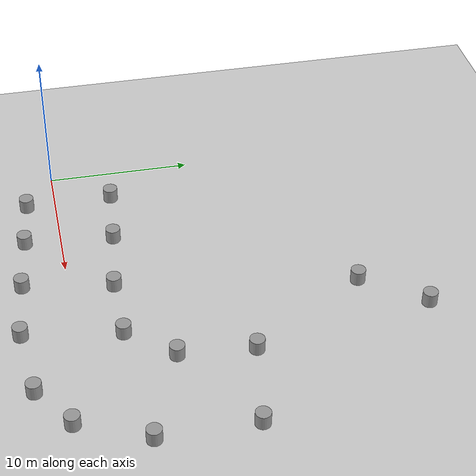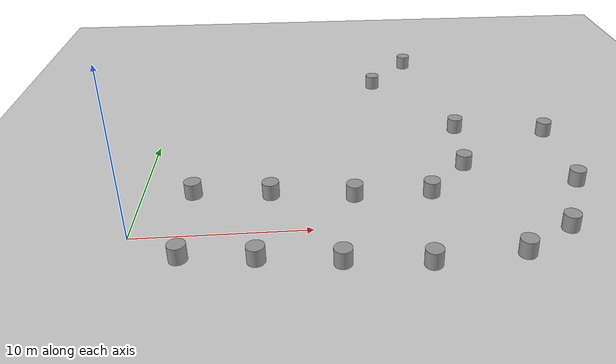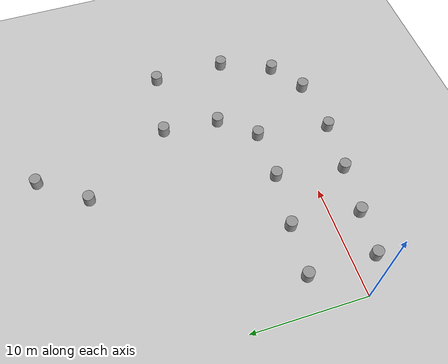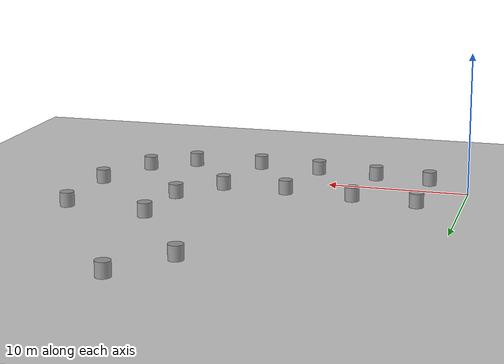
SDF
<sdf version="1.4">
 <world name="default">
  <model name="ground_plane">
   <static>1</static>
   <link name="link">
    <collision name="collision">
     <geometry><plane><normal>0 0 1</normal><size>100 100</size></plane></geometry>
     <surface><friction><ode><mu>100</mu><mu2>50</mu2></ode></friction></surface>
    </collision>
    <visual name="visual">
     <cast_shadows>0</cast_shadows>
     <geometry><plane><normal>0 0 1</normal><size>100 100</size></plane></geometry>
     <material>
      <script><uri>file://media/materials/scripts/gazebo.material</uri><name>Gazebo/Grey</name></script>
     </material>
    </visual>
    <velocity_decay><linear>0</linear><angular>0</angular></velocity_decay>
   </link>
  </model>
  <light name="sun" type="directional">
   <pose>0 0 10 0 -0 0</pose>
   <diffuse>0.8 0.8 0.8 1</diffuse>
   <specular>0.2 0.2 0.2 1</specular>
   <attenuation>
    <range>1000</range>
    <constant>0.9</constant>
    <linear>0.01</linear>
    <quadratic>0.001</quadratic>
   </attenuation>
   <direction>-0.5 0.1 -0.9</direction>
  </light>
  <physics type="ode">
   <gravity>0 0 -9.81</gravity>
   <max_step_size>0.01</max_step_size>
   <real_time_factor>1</real_time_factor>
   <real_time_update_rate>100</real_time_update_rate>
   <ode>
    <solver><type>quick</type><iters>5000</iters><sor>1.3</sor></solver>
    <constraints>
     <cfm>0</cfm>
     <erp>0.1</erp>
     <contact_max_correcting_vel>100</contact_max_correcting_vel>
     <contact_surface_layer>0.001</contact_surface_layer>
    </constraints>
   </ode>
  </physics>
  <scene><ambient>0.4 0.4 0.4 1</ambient><background>0.7 0.7 0.7 1</background><shadows>1</shadows></scene>
  <spherical_coordinates>
   <surface_model>EARTH_WGS84</surface_model>
   <latitude_deg>0</latitude_deg>
   <longitude_deg>0</longitude_deg>
   <elevation>0</elevation>
   <heading_deg>0</heading_deg>
  </spherical_coordinates>
  <model name="unit_cylinder_1">
   <pose>3 -2 0.499119 -0 -0 -0</pose>
   <link name="link">
    <inertial>
     <mass>1</mass>
     <inertia><ixx>1</ixx><ixy>0</ixy><ixz>0</ixz><iyy>1</iyy><iyz>0</iyz><izz>1</izz></inertia>
    </inertial>
    <collision name="collision">
     <geometry><cylinder><radius>0.5</radius><length>1</length></cylinder></geometry>
    </collision>
    <visual name="visual">
     <geometry><cylinder><radius>0.5</radius><length>1</length></cylinder></geometry>
     <material>
      <script><uri>file://media/materials/scripts/gazebo.material</uri><name>Gazebo/Grey</name></script>
     </material>
    </visual>
    <velocity_decay><linear>0</linear><angular>0</angular></velocity_decay>
   </link>
   <static>0</static>
  </model>
  <model name="unit_cylinder_2">
   <pose>7 -2.46057 0.499119 -0 -0 -0</pose>
   <link name="link">
    <inertial>
     <mass>1</mass>
     <inertia><ixx>1</ixx><ixy>0</ixy><ixz>0</ixz><iyy>1</iyy><iyz>0</iyz><izz>1</izz></inertia>
    </inertial>
    <collision name="collision">
     <geometry><cylinder><radius>0.5</radius><length>1</length></cylinder></geometry>
    </collision>
    <visual name="visual">
     <geometry><cylinder><radius>0.5</radius><length>1</length></cylinder></geometry>
     <material>
      <script><uri>file://media/materials/scripts/gazebo.material</uri><name>Gazebo/Grey</name></script>
     </material>
    </visual>
    <velocity_decay><linear>0</linear><angular>0</angular></velocity_decay>
   </link>
   <static>0</static>
  </model>
  <model name="unit_cylinder_3">
   <pose>11.4238 -3 0.499119 -0 -0 -0</pose>
   <link name="link">
    <inertial>
     <mass>1</mass>
     <inertia><ixx>1</ixx><ixy>0</ixy><ixz>0</ixz><iyy>1</iyy><iyz>0</iyz><izz>1</izz></inertia>
    </inertial>
    <collision name="collision">
     <geometry><cylinder><radius>0.5</radius><length>1</length></cylinder></geometry>
    </collision>
    <visual name="visual">
     <geometry><cylinder><radius>0.5</radius><length>1</length></cylinder></geometry>
     <material>
      <script><uri>file://media/materials/scripts/gazebo.material</uri><name>Gazebo/Grey</name></script>
     </material>
    </visual>
    <velocity_decay><linear>0</linear><angular>0</angular></velocity_decay>
   </link>
   <static>0</static>
  </model>
  <model name="unit_cylinder_4">
   <pose>3 4 0.499119 -0 -0 -0</pose>
   <link name="link">
    <inertial>
     <mass>1</mass>
     <inertia><ixx>1</ixx><ixy>0</ixy><ixz>0</ixz><iyy>1</iyy><iyz>0</iyz><izz>1</izz></inertia>
    </inertial>
    <collision name="collision">
     <geometry><cylinder><radius>0.5</radius><length>1</length></cylinder></geometry>
    </collision>
    <visual name="visual">
     <geometry><cylinder><radius>0.5</radius><length>1</length></cylinder></geometry>
     <material>
      <script><uri>file://media/materials/scripts/gazebo.material</uri><name>Gazebo/Grey</name></script>
     </material>
    </visual>
    <velocity_decay><linear>0</linear><angular>0</angular></velocity_decay>
   </link>
   <static>0</static>
  </model>
  <model name="unit_cylinder_5">
   <pose>7.54573 3.58977 0.499119 -0 -0 -0</pose>
   <link name="link">
    <inertial>
     <mass>1</mass>
     <inertia><ixx>1</ixx><ixy>0</ixy><ixz>0</ixz><iyy>1</iyy><iyz>0</iyz><izz>1</izz></inertia>
    </inertial>
    <collision name="collision">
     <geometry><cylinder><radius>0.5</radius><length>1</length></cylinder></geometry>
    </collision>
    <visual name="visual">
     <geometry><cylinder><radius>0.5</radius><length>1</length></cylinder></geometry>
     <material>
      <script><uri>file://media/materials/scripts/gazebo.material</uri><name>Gazebo/Grey</name></script>
     </material>
    </visual>
    <velocity_decay><linear>0</linear><angular>0</angular></velocity_decay>
   </link>
   <static>0</static>
  </model>
  <model name="unit_cylinder_6">
   <pose>12.4424 3 0.499119 -0 -0 -0</pose>
   <link name="link">
    <inertial>
     <mass>1</mass>
     <inertia><ixx>1</ixx><ixy>0</ixy><ixz>0</ixz><iyy>1</iyy><iyz>0</iyz><izz>1</izz></inertia>
    </inertial>
    <collision name="collision">
     <geometry><cylinder><radius>0.5</radius><length>1</length></cylinder></geometry>
    </collision>
    <visual name="visual">
     <geometry><cylinder><radius>0.5</radius><length>1</length></cylinder></geometry>
     <material>
      <script><uri>file://media/materials/scripts/gazebo.material</uri><name>Gazebo/Grey</name></script>
     </material>
    </visual>
    <velocity_decay><linear>0</linear><angular>0</angular></velocity_decay>
   </link>
   <static>0</static>
  </model>
  <model name="unit_cylinder_7">
   <pose>16 -3.44297 0.499119 -0 -0 -0</pose>
   <link name="link">
    <inertial>
     <mass>1</mass>
     <inertia><ixx>1</ixx><ixy>0</ixy><ixz>0</ixz><iyy>1</iyy><iyz>0</iyz><izz>1</izz></inertia>
    </inertial>
    <collision name="collision">
     <geometry><cylinder><radius>0.5</radius><length>1</length></cylinder></geometry>
    </collision>
    <visual name="visual">
     <geometry><cylinder><radius>0.5</radius><length>1</length></cylinder></geometry>
     <material>
      <script><uri>file://media/materials/scripts/gazebo.material</uri><name>Gazebo/Grey</name></script>
     </material>
    </visual>
    <velocity_decay><linear>0</linear><angular>0</angular></velocity_decay>
   </link>
   <static>0</static>
  </model>
  <model name="unit_cylinder_8">
   <pose>17 3 0.499119 -0 -0 -0</pose>
   <link name="link">
    <inertial>
     <mass>1</mass>
     <inertia><ixx>1</ixx><ixy>0</ixy><ixz>0</ixz><iyy>1</iyy><iyz>0</iyz><izz>1</izz></inertia>
    </inertial>
    <collision name="collision">
     <geometry><cylinder><radius>0.5</radius><length>1</length></cylinder></geometry>
    </collision>
    <visual name="visual">
     <geometry><cylinder><radius>0.5</radius><length>1</length></cylinder></geometry>
     <material>
      <script><uri>file://media/materials/scripts/gazebo.material</uri><name>Gazebo/Grey</name></script>
     </material>
    </visual>
    <velocity_decay><linear>0</linear><angular>0</angular></velocity_decay>
   </link>
   <static>0</static>
  </model>
  <model name="unit_cylinder_9">
   <pose>21 -3 0.499119 -0 -0 -0</pose>
   <link name="link">
    <inertial>
     <mass>1</mass>
     <inertia><ixx>1</ixx><ixy>0</ixy><ixz>0</ixz><iyy>1</iyy><iyz>0</iyz><izz>1</izz></inertia>
    </inertial>
    <collision name="collision">
     <geometry><cylinder><radius>0.5</radius><length>1</length></cylinder></geometry>
    </collision>
    <visual name="visual">
     <geometry><cylinder><radius>0.5</radius><length>1</length></cylinder></geometry>
     <material>
      <script><uri>file://media/materials/scripts/gazebo.material</uri><name>Gazebo/Grey</name></script>
     </material>
    </visual>
    <velocity_decay><linear>0</linear><angular>0</angular></velocity_decay>
   </link>
   <static>0</static>
  </model>
  <model name="unit_cylinder_10">
   <pose>19.5596 6 0.499119 -0 -0 -0</pose>
   <link name="link">
    <inertial>
     <mass>1</mass>
     <inertia><ixx>1</ixx><ixy>0</ixy><ixz>0</ixz><iyy>1</iyy><iyz>0</iyz><izz>1</izz></inertia>
    </inertial>
    <collision name="collision">
     <geometry><cylinder><radius>0.5</radius><length>1</length></cylinder></geometry>
    </collision>
    <visual name="visual">
     <geometry><cylinder><radius>0.5</radius><length>1</length></cylinder></geometry>
     <material>
      <script><uri>file://media/materials/scripts/gazebo.material</uri><name>Gazebo/Grey</name></script>
     </material>
    </visual>
    <velocity_decay><linear>0</linear><angular>0</angular></velocity_decay>
   </link>
   <static>0</static>
  </model>
  <model name="unit_cylinder_11">
   <pose>24 -1 0.499119 -0 -0 -0</pose>
   <link name="link">
    <inertial>
     <mass>1</mass>
     <inertia><ixx>1</ixx><ixy>0</ixy><ixz>0</ixz><iyy>1</iyy><iyz>0</iyz><izz>1</izz></inertia>
    </inertial>
    <collision name="collision">
     <geometry><cylinder><radius>0.5</radius><length>1</length></cylinder></geometry>
    </collision>
    <visual name="visual">
     <geometry><cylinder><radius>0.5</radius><length>1</length></cylinder></geometry>
     <material>
      <script><uri>file://media/materials/scripts/gazebo.material</uri><name>Gazebo/Grey</name></script>
     </material>
    </visual>
    <velocity_decay><linear>0</linear><angular>0</angular></velocity_decay>
   </link>
   <static>0</static>
  </model>
  <model name="unit_cylinder_12">
   <pose>26 3.53499 0.499119 -0 -0 -0</pose>
   <link name="link">
    <inertial>
     <mass>1</mass>
     <inertia><ixx>1</ixx><ixy>0</ixy><ixz>0</ixz><iyy>1</iyy><iyz>0</iyz><izz>1</izz></inertia>
    </inertial>
    <collision name="collision">
     <geometry><cylinder><radius>0.5</radius><length>1</length></cylinder></geometry>
    </collision>
    <visual name="visual">
     <geometry><cylinder><radius>0.5</radius><length>1</length></cylinder></geometry>
     <material>
      <script><uri>file://media/materials/scripts/gazebo.material</uri><name>Gazebo/Grey</name></script>
     </material>
    </visual>
    <velocity_decay><linear>0</linear><angular>0</angular></velocity_decay>
   </link>
   <static>0</static>
  </model>
  <model name="unit_cylinder_13">
   <pose>20 11 0.499119 -0 -0 -0</pose>
   <link name="link">
    <inertial>
     <mass>1</mass>
     <inertia><ixx>1</ixx><ixy>0</ixy><ixz>0</ixz><iyy>1</iyy><iyz>0</iyz><izz>1</izz></inertia>
    </inertial>
    <collision name="collision">
     <geometry><cylinder><radius>0.5</radius><length>1</length></cylinder></geometry>
    </collision>
    <visual name="visual">
     <geometry><cylinder><radius>0.5</radius><length>1</length></cylinder></geometry>
     <material>
      <script><uri>file://media/materials/scripts/gazebo.material</uri><name>Gazebo/Grey</name></script>
     </material>
    </visual>
    <velocity_decay><linear>0</linear><angular>0</angular></velocity_decay>
   </link>
   <static>0</static>
  </model>
  <model name="unit_cylinder_14">
   <pose>26 10 0.499119 -0 -0 -0</pose>
   <link name="link">
    <inertial>
     <mass>1</mass>
     <inertia><ixx>1</ixx><ixy>0</ixy><ixz>0</ixz><iyy>1</iyy><iyz>0</iyz><izz>1</izz></inertia>
    </inertial>
    <collision name="collision">
     <geometry><cylinder><radius>0.5</radius><length>1</length></cylinder></geometry>
    </collision>
    <visual name="visual">
     <geometry><cylinder><radius>0.5</radius><length>1</length></cylinder></geometry>
     <material>
      <script><uri>file://media/materials/scripts/gazebo.material</uri><name>Gazebo/Grey</name></script>
     </material>
    </visual>
    <velocity_decay><linear>0</linear><angular>0</angular></velocity_decay>
   </link>
   <static>0</static>
  </model>
  <model name="unit_cylinder_15">
   <pose>15 19 0.499119 -0 -0 -0</pose>
   <link name="link">
    <inertial>
     <mass>1</mass>
     <inertia><ixx>1</ixx><ixy>0</ixy><ixz>0</ixz><iyy>1</iyy><iyz>0</iyz><izz>1</izz></inertia>
    </inertial>
    <collision name="collision">
     <geometry><cylinder><radius>0.5</radius><length>1</length></cylinder></geometry>
    </collision>
    <visual name="visual">
     <geometry><cylinder><radius>0.5</radius><length>1</length></cylinder></geometry>
     <material>
      <script><uri>file://media/materials/scripts/gazebo.material</uri><name>Gazebo/Grey</name></script>
     </material>
    </visual>
    <velocity_decay><linear>0</linear><angular>0</angular></velocity_decay>
   </link>
   <static>0</static>
  </model>
  <model name="unit_cylinder_16">
   <pose>18 23 0.499119 -0 -0 -0</pose>
   <link name="link">
    <inertial>
     <mass>1</mass>
     <inertia><ixx>1</ixx><ixy>0</ixy><ixz>0</ixz><iyy>1</iyy><iyz>0</iyz><izz>1</izz></inertia>
    </inertial>
    <collision name="collision">
     <geometry><cylinder><radius>0.5</radius><length>1</length></cylinder></geometry>
    </collision>
    <visual name="visual">
     <geometry><cylinder><radius>0.5</radius><length>1</length></cylinder></geometry>
     <material>
      <script><uri>file://media/materials/scripts/gazebo.material</uri><name>Gazebo/Grey</name></script>
     </material>
    </visual>
    <velocity_decay><linear>0</linear><angular>0</angular></velocity_decay>
   </link>
   <static>0</static>
  </model>
 </world>
</sdf>
